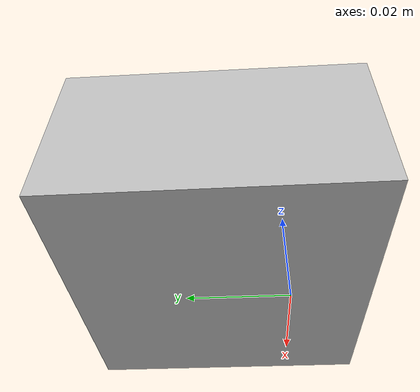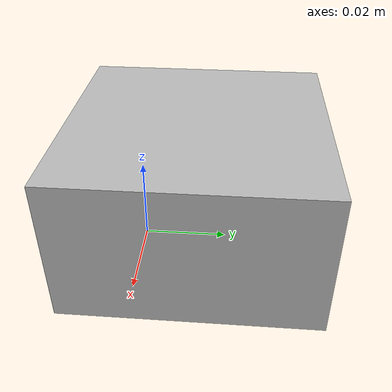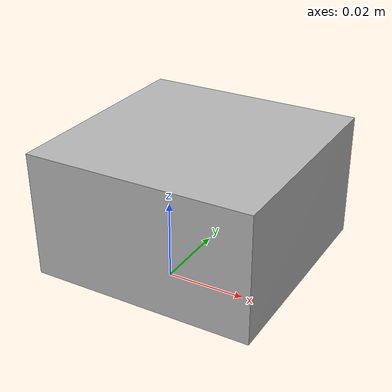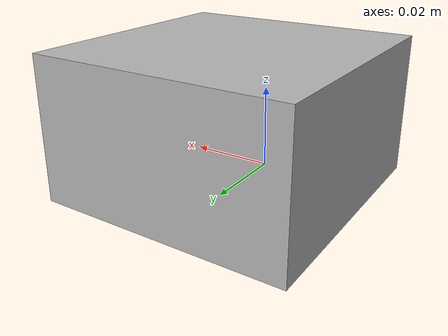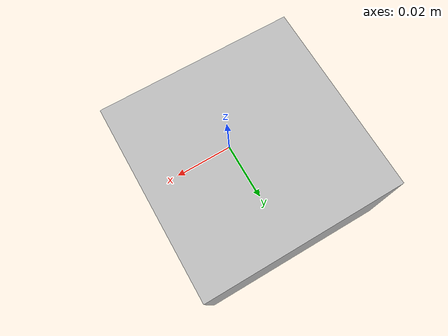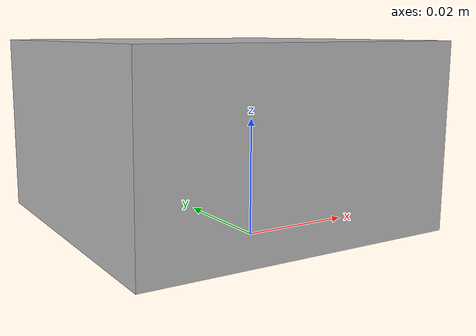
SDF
<?xml version="1.0" ?>
<sdf version="1.5">
  <model name="Custom box">
    <static>false</static>
    <link name="box_link">

      <collision name="collision">
        <geometry>
          <box>
            <size>0.058 0.058 0.033</size>
          </box>
        </geometry>
        <pose>0 0 0.016 0 0 0</pose>
      </collision>

      <visual name="visual">
        <geometry>
          <mesh>
            <uri>model://box/meshes/CUBE2.dae</uri>
            <scale>1.0 1.0 1.0</scale>
          </mesh>
        </geometry>
        <material>
          <script>
            <uri>model://box/materials/scripts</uri>
            <uri>model://box/materials/textures</uri>
            <name>Box/Diffuse</name>
          </script>
        </material>
      </visual>

      <inertial>
        <pose>0 0 0 0 0 0</pose>
        <inertia>
          <ixx>0.1</ixx>
          <ixy>0.1</ixy>
          <ixz>0.1</ixz>
          <iyy>0.1</iyy>
          <iyz>0.1</iyz>
          <izz>0.1</izz>
        </inertia>
        <mass>0.14</mass>
      </inertial>

    </link>
  </model>
</sdf>
